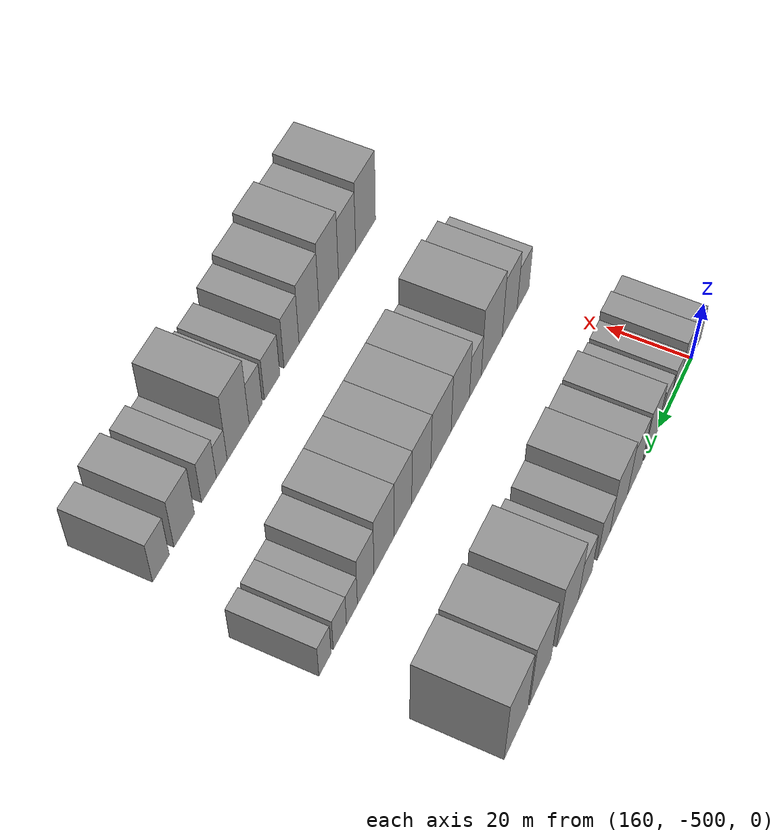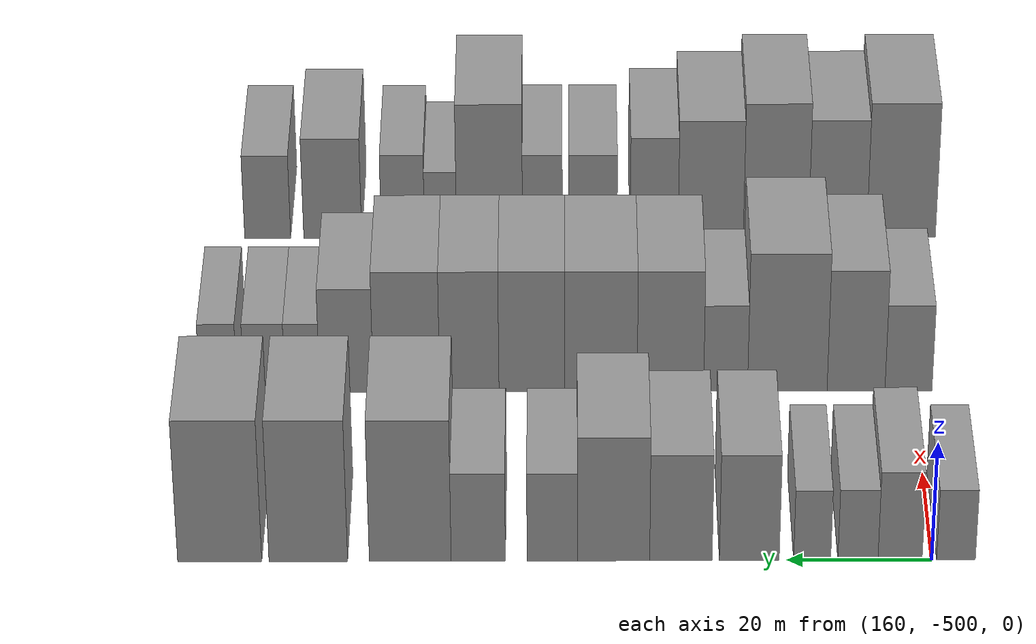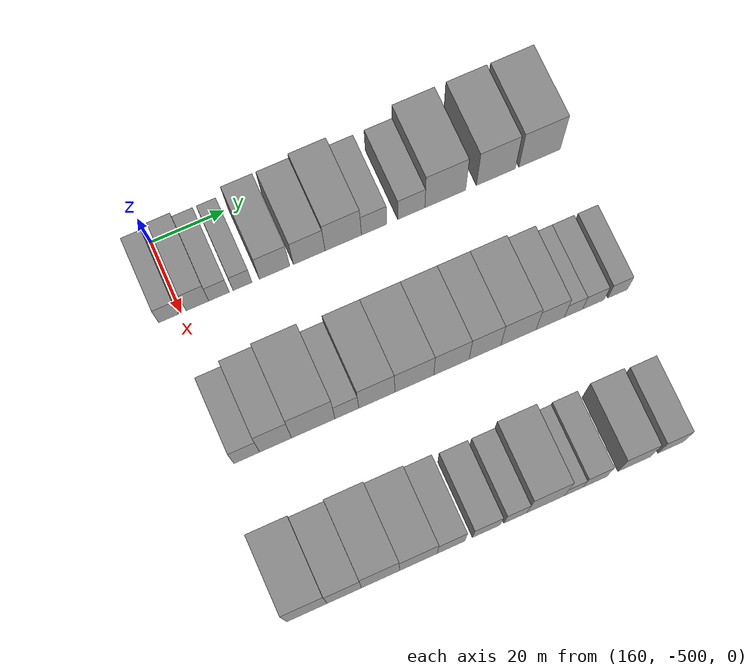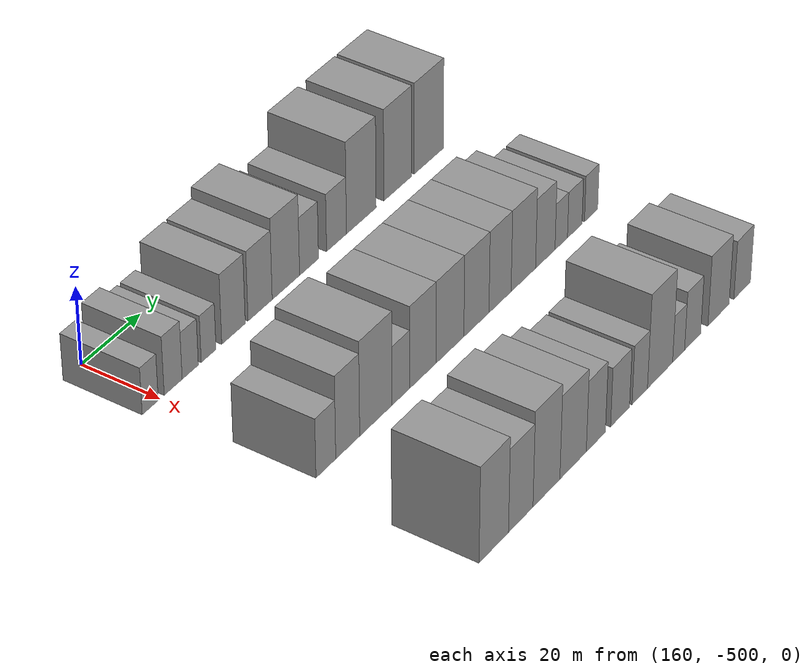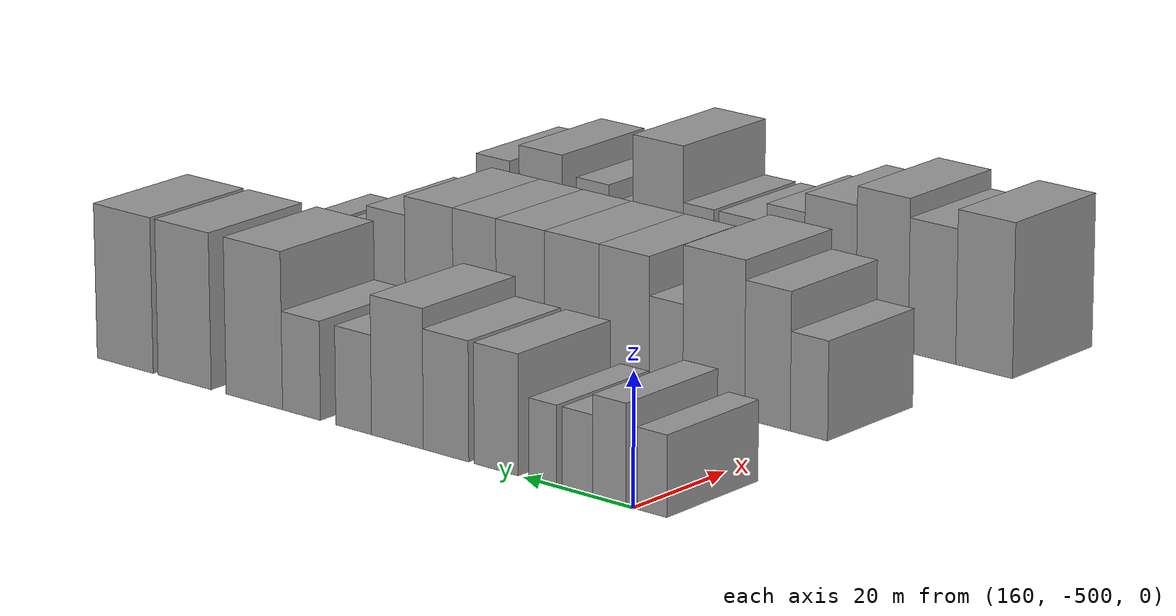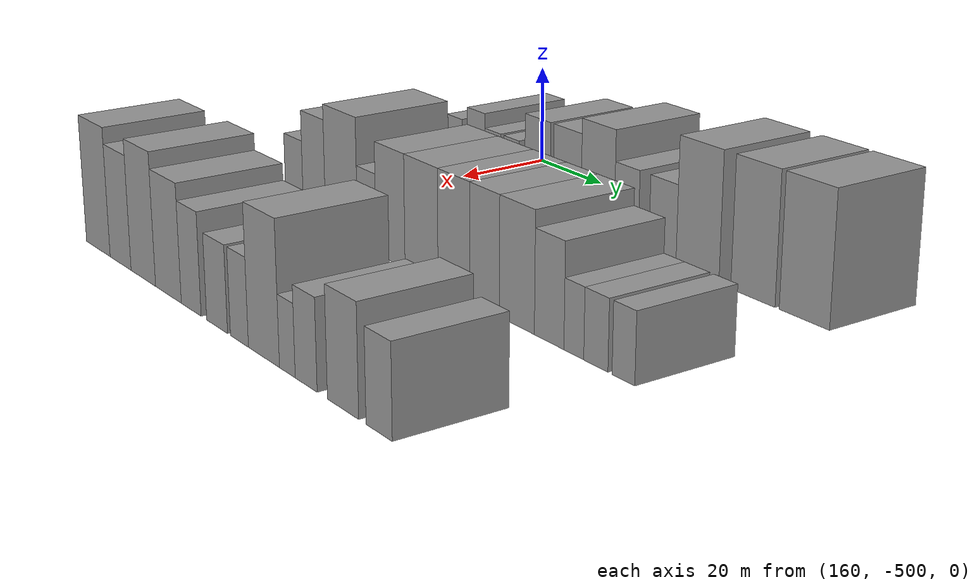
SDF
<sdf version="1.6">
 <world name="default">
  <model name="building_424">
   <static>1</static>
   <pose>170.0000 -503.2953 0 0.000000 0.000000 0.000000</pose>
   <link name="link">
    <pose>0 0 6.00 0 0 0</pose>
    <collision name="collision"><geometry><box><size>20.0000 5.3523 12.0000</size></box></geometry></collision>
    <visual name="visual">
     <cast_shadows>0</cast_shadows>
     <geometry><box><size>20.0000 5.3523 12.0000</size></box></geometry>
     <material>
      <script>
       <uri>model://grey_wall/materials/scripts</uri>
       <uri>model://grey_wall/materials/textures</uri>
       <name>vrc/grey_wall</name>
      </script>
     </material>
    </visual>
   </link>
  </model>
  <model name="building_425">
   <static>1</static>
   <pose>170.0000 -495.5739 0 0.000000 0.000000 0.000000</pose>
   <link name="link">
    <pose>0 0 7.50 0 0 0</pose>
    <collision name="collision"><geometry><box><size>20.0000 6.0906 15.0000</size></box></geometry></collision>
    <visual name="visual">
     <cast_shadows>0</cast_shadows>
     <geometry><box><size>20.0000 6.0906 15.0000</size></box></geometry>
     <material>
      <script>
       <uri>model://grey_wall/materials/scripts</uri>
       <uri>model://grey_wall/materials/textures</uri>
       <name>vrc/grey_wall</name>
      </script>
     </material>
    </visual>
   </link>
  </model>
  <model name="building_426">
   <static>1</static>
   <pose>170.0000 -489.7649 0 0.000000 0.000000 0.000000</pose>
   <link name="link">
    <pose>0 0 6.00 0 0 0</pose>
    <collision name="collision"><geometry><box><size>20.0000 5.5274 12.0000</size></box></geometry></collision>
    <visual name="visual">
     <cast_shadows>0</cast_shadows>
     <geometry><box><size>20.0000 5.5274 12.0000</size></box></geometry>
     <material>
      <script>
       <uri>model://grey_wall/materials/scripts</uri>
       <uri>model://grey_wall/materials/textures</uri>
       <name>vrc/grey_wall</name>
      </script>
     </material>
    </visual>
   </link>
  </model>
  <model name="building_427">
   <static>1</static>
   <pose>170.0000 -483.4467 0 0.000000 0.000000 0.000000</pose>
   <link name="link">
    <pose>0 0 6.00 0 0 0</pose>
    <collision name="collision"><geometry><box><size>20.0000 5.1091 12.0000</size></box></geometry></collision>
    <visual name="visual">
     <cast_shadows>0</cast_shadows>
     <geometry><box><size>20.0000 5.1091 12.0000</size></box></geometry>
     <material>
      <script>
       <uri>model://grey_wall/materials/scripts</uri>
       <uri>model://grey_wall/materials/textures</uri>
       <name>vrc/grey_wall</name>
      </script>
     </material>
    </visual>
   </link>
  </model>
  <model name="building_428">
   <static>1</static>
   <pose>170.0000 -474.7664 0 0.000000 0.000000 0.000000</pose>
   <link name="link">
    <pose>0 0 9.00 0 0 0</pose>
    <collision name="collision"><geometry><box><size>20.0000 8.2514 18.0000</size></box></geometry></collision>
    <visual name="visual">
     <cast_shadows>0</cast_shadows>
     <geometry><box><size>20.0000 8.2514 18.0000</size></box></geometry>
     <material>
      <script>
       <uri>model://grey_wall/materials/scripts</uri>
       <uri>model://grey_wall/materials/textures</uri>
       <name>vrc/grey_wall</name>
      </script>
     </material>
    </visual>
   </link>
  </model>
  <model name="building_429">
   <static>1</static>
   <pose>170.0000 -465.3327 0 0.000000 0.000000 0.000000</pose>
   <link name="link">
    <pose>0 0 9.00 0 0 0</pose>
    <collision name="collision"><geometry><box><size>20.0000 8.6159 18.0000</size></box></geometry></collision>
    <visual name="visual">
     <cast_shadows>0</cast_shadows>
     <geometry><box><size>20.0000 8.6159 18.0000</size></box></geometry>
     <material>
      <script>
       <uri>model://grey_wall/materials/scripts</uri>
       <uri>model://grey_wall/materials/textures</uri>
       <name>vrc/grey_wall</name>
      </script>
     </material>
    </visual>
   </link>
  </model>
  <model name="building_430">
   <static>1</static>
   <pose>170.0000 -456.0516 0 0.000000 0.000000 0.000000</pose>
   <link name="link">
    <pose>0 0 10.50 0 0 0</pose>
    <collision name="collision"><geometry><box><size>20.0000 9.9464 21.0000</size></box></geometry></collision>
    <visual name="visual">
     <cast_shadows>0</cast_shadows>
     <geometry><box><size>20.0000 9.9464 21.0000</size></box></geometry>
     <material>
      <script>
       <uri>model://grey_wall/materials/scripts</uri>
       <uri>model://grey_wall/materials/textures</uri>
       <name>vrc/grey_wall</name>
      </script>
     </material>
    </visual>
   </link>
  </model>
  <model name="building_431">
   <static>1</static>
   <pose>170.0000 -447.6003 0 0.000000 0.000000 0.000000</pose>
   <link name="link">
    <pose>0 0 7.50 0 0 0</pose>
    <collision name="collision"><geometry><box><size>20.0000 6.9562 15.0000</size></box></geometry></collision>
    <visual name="visual">
     <cast_shadows>0</cast_shadows>
     <geometry><box><size>20.0000 6.9562 15.0000</size></box></geometry>
     <material>
      <script>
       <uri>model://grey_wall/materials/scripts</uri>
       <uri>model://grey_wall/materials/textures</uri>
       <name>vrc/grey_wall</name>
      </script>
     </material>
    </visual>
   </link>
  </model>
  <model name="building_432">
   <static>1</static>
   <pose>170.0000 -437.3843 0 0.000000 0.000000 0.000000</pose>
   <link name="link">
    <pose>0 0 7.50 0 0 0</pose>
    <collision name="collision"><geometry><box><size>20.0000 7.4759 15.0000</size></box></geometry></collision>
    <visual name="visual">
     <cast_shadows>0</cast_shadows>
     <geometry><box><size>20.0000 7.4759 15.0000</size></box></geometry>
     <material>
      <script>
       <uri>model://grey_wall/materials/scripts</uri>
       <uri>model://grey_wall/materials/textures</uri>
       <name>vrc/grey_wall</name>
      </script>
     </material>
    </visual>
   </link>
  </model>
  <model name="building_433">
   <static>1</static>
   <pose>170.0000 -428.0015 0 0.000000 0.000000 0.000000</pose>
   <link name="link">
    <pose>0 0 12.00 0 0 0</pose>
    <collision name="collision"><geometry><box><size>20.0000 11.2898 24.0000</size></box></geometry></collision>
    <visual name="visual">
     <cast_shadows>0</cast_shadows>
     <geometry><box><size>20.0000 11.2898 24.0000</size></box></geometry>
     <material>
      <script>
       <uri>model://grey_wall/materials/scripts</uri>
       <uri>model://grey_wall/materials/textures</uri>
       <name>vrc/grey_wall</name>
      </script>
     </material>
    </visual>
   </link>
  </model>
  <model name="building_434">
   <static>1</static>
   <pose>170.0000 -413.9368 0 0.000000 0.000000 0.000000</pose>
   <link name="link">
    <pose>0 0 12.00 0 0 0</pose>
    <collision name="collision"><geometry><box><size>20.0000 10.8395 24.0000</size></box></geometry></collision>
    <visual name="visual">
     <cast_shadows>0</cast_shadows>
     <geometry><box><size>20.0000 10.8395 24.0000</size></box></geometry>
     <material>
      <script>
       <uri>model://grey_wall/materials/scripts</uri>
       <uri>model://grey_wall/materials/textures</uri>
       <name>vrc/grey_wall</name>
      </script>
     </material>
    </visual>
   </link>
  </model>
  <model name="building_435">
   <static>1</static>
   <pose>170.0000 -401.7224 0 0.000000 0.000000 0.000000</pose>
   <link name="link">
    <pose>0 0 12.00 0 0 0</pose>
    <collision name="collision"><geometry><box><size>20.0000 11.5895 24.0000</size></box></geometry></collision>
    <visual name="visual">
     <cast_shadows>0</cast_shadows>
     <geometry><box><size>20.0000 11.5895 24.0000</size></box></geometry>
     <material>
      <script>
       <uri>model://grey_wall/materials/scripts</uri>
       <uri>model://grey_wall/materials/textures</uri>
       <name>vrc/grey_wall</name>
      </script>
     </material>
    </visual>
   </link>
  </model>
  <model name="building_556">
   <static>1</static>
   <pose>210.0000 -499.2651 0 0.000000 0.000000 0.000000</pose>
   <link name="link">
    <pose>0 0 7.50 0 0 0</pose>
    <collision name="collision"><geometry><box><size>20.0000 6.8264 15.0000</size></box></geometry></collision>
    <visual name="visual">
     <cast_shadows>0</cast_shadows>
     <geometry><box><size>20.0000 6.8264 15.0000</size></box></geometry>
     <material>
      <script>
       <uri>model://grey_wall/materials/scripts</uri>
       <uri>model://grey_wall/materials/textures</uri>
       <name>vrc/grey_wall</name>
      </script>
     </material>
    </visual>
   </link>
  </model>
  <model name="building_557">
   <static>1</static>
   <pose>210.0000 -491.6516 0 0.000000 0.000000 0.000000</pose>
   <link name="link">
    <pose>0 0 10.50 0 0 0</pose>
    <collision name="collision"><geometry><box><size>20.0000 8.4005 21.0000</size></box></geometry></collision>
    <visual name="visual">
     <cast_shadows>0</cast_shadows>
     <geometry><box><size>20.0000 8.4005 21.0000</size></box></geometry>
     <material>
      <script>
       <uri>model://grey_wall/materials/scripts</uri>
       <uri>model://grey_wall/materials/textures</uri>
       <name>vrc/grey_wall</name>
      </script>
     </material>
    </visual>
   </link>
  </model>
  <model name="building_558">
   <static>1</static>
   <pose>210.0000 -481.6776 0 0.000000 0.000000 0.000000</pose>
   <link name="link">
    <pose>0 0 12.00 0 0 0</pose>
    <collision name="collision"><geometry><box><size>20.0000 11.5476 24.0000</size></box></geometry></collision>
    <visual name="visual">
     <cast_shadows>0</cast_shadows>
     <geometry><box><size>20.0000 11.5476 24.0000</size></box></geometry>
     <material>
      <script>
       <uri>model://grey_wall/materials/scripts</uri>
       <uri>model://grey_wall/materials/textures</uri>
       <name>vrc/grey_wall</name>
      </script>
     </material>
    </visual>
   </link>
  </model>
  <model name="building_559">
   <static>1</static>
   <pose>210.0000 -472.7165 0 0.000000 0.000000 0.000000</pose>
   <link name="link">
    <pose>0 0 7.50 0 0 0</pose>
    <collision name="collision"><geometry><box><size>20.0000 6.3744 15.0000</size></box></geometry></collision>
    <visual name="visual">
     <cast_shadows>0</cast_shadows>
     <geometry><box><size>20.0000 6.3744 15.0000</size></box></geometry>
     <material>
      <script>
       <uri>model://grey_wall/materials/scripts</uri>
       <uri>model://grey_wall/materials/textures</uri>
       <name>vrc/grey_wall</name>
      </script>
     </material>
    </visual>
   </link>
  </model>
  <model name="building_560">
   <static>1</static>
   <pose>210.0000 -464.7133 0 0.000000 0.000000 0.000000</pose>
   <link name="link">
    <pose>0 0 10.50 0 0 0</pose>
    <collision name="collision"><geometry><box><size>20.0000 9.6320 21.0000</size></box></geometry></collision>
    <visual name="visual">
     <cast_shadows>0</cast_shadows>
     <geometry><box><size>20.0000 9.6320 21.0000</size></box></geometry>
     <material>
      <script>
       <uri>model://grey_wall/materials/scripts</uri>
       <uri>model://grey_wall/materials/textures</uri>
       <name>vrc/grey_wall</name>
      </script>
     </material>
    </visual>
   </link>
  </model>
  <model name="building_561">
   <static>1</static>
   <pose>210.0000 -454.6534 0 0.000000 0.000000 0.000000</pose>
   <link name="link">
    <pose>0 0 10.50 0 0 0</pose>
    <collision name="collision"><geometry><box><size>20.0000 10.4879 21.0000</size></box></geometry></collision>
    <visual name="visual">
     <cast_shadows>0</cast_shadows>
     <geometry><box><size>20.0000 10.4879 21.0000</size></box></geometry>
     <material>
      <script>
       <uri>model://grey_wall/materials/scripts</uri>
       <uri>model://grey_wall/materials/textures</uri>
       <name>vrc/grey_wall</name>
      </script>
     </material>
    </visual>
   </link>
  </model>
  <model name="building_562">
   <static>1</static>
   <pose>210.0000 -444.6317 0 0.000000 0.000000 0.000000</pose>
   <link name="link">
    <pose>0 0 10.50 0 0 0</pose>
    <collision name="collision"><geometry><box><size>20.0000 9.5554 21.0000</size></box></geometry></collision>
    <visual name="visual">
     <cast_shadows>0</cast_shadows>
     <geometry><box><size>20.0000 9.5554 21.0000</size></box></geometry>
     <material>
      <script>
       <uri>model://grey_wall/materials/scripts</uri>
       <uri>model://grey_wall/materials/textures</uri>
       <name>vrc/grey_wall</name>
      </script>
     </material>
    </visual>
   </link>
  </model>
  <model name="building_563">
   <static>1</static>
   <pose>210.0000 -435.5617 0 0.000000 0.000000 0.000000</pose>
   <link name="link">
    <pose>0 0 10.50 0 0 0</pose>
    <collision name="collision"><geometry><box><size>20.0000 8.5847 21.0000</size></box></geometry></collision>
    <visual name="visual">
     <cast_shadows>0</cast_shadows>
     <geometry><box><size>20.0000 8.5847 21.0000</size></box></geometry>
     <material>
      <script>
       <uri>model://grey_wall/materials/scripts</uri>
       <uri>model://grey_wall/materials/textures</uri>
       <name>vrc/grey_wall</name>
      </script>
     </material>
    </visual>
   </link>
  </model>
  <model name="building_564">
   <static>1</static>
   <pose>210.0000 -426.4533 0 0.000000 0.000000 0.000000</pose>
   <link name="link">
    <pose>0 0 10.50 0 0 0</pose>
    <collision name="collision"><geometry><box><size>20.0000 9.6320 21.0000</size></box></geometry></collision>
    <visual name="visual">
     <cast_shadows>0</cast_shadows>
     <geometry><box><size>20.0000 9.6320 21.0000</size></box></geometry>
     <material>
      <script>
       <uri>model://grey_wall/materials/scripts</uri>
       <uri>model://grey_wall/materials/textures</uri>
       <name>vrc/grey_wall</name>
      </script>
     </material>
    </visual>
   </link>
  </model>
  <model name="building_565">
   <static>1</static>
   <pose>210.0000 -417.7530 0 0.000000 0.000000 0.000000</pose>
   <link name="link">
    <pose>0 0 9.00 0 0 0</pose>
    <collision name="collision"><geometry><box><size>20.0000 7.7686 18.0000</size></box></geometry></collision>
    <visual name="visual">
     <cast_shadows>0</cast_shadows>
     <geometry><box><size>20.0000 7.7686 18.0000</size></box></geometry>
     <material>
      <script>
       <uri>model://grey_wall/materials/scripts</uri>
       <uri>model://grey_wall/materials/textures</uri>
       <name>vrc/grey_wall</name>
      </script>
     </material>
    </visual>
   </link>
  </model>
  <model name="building_566">
   <static>1</static>
   <pose>210.0000 -411.3527 0 0.000000 0.000000 0.000000</pose>
   <link name="link">
    <pose>0 0 6.00 0 0 0</pose>
    <collision name="collision"><geometry><box><size>20.0000 5.0319 12.0000</size></box></geometry></collision>
    <visual name="visual">
     <cast_shadows>0</cast_shadows>
     <geometry><box><size>20.0000 5.0319 12.0000</size></box></geometry>
     <material>
      <script>
       <uri>model://grey_wall/materials/scripts</uri>
       <uri>model://grey_wall/materials/textures</uri>
       <name>vrc/grey_wall</name>
      </script>
     </material>
    </visual>
   </link>
  </model>
  <model name="building_567">
   <static>1</static>
   <pose>210.0000 -405.8599 0 0.000000 0.000000 0.000000</pose>
   <link name="link">
    <pose>0 0 6.00 0 0 0</pose>
    <collision name="collision"><geometry><box><size>20.0000 5.9537 12.0000</size></box></geometry></collision>
    <visual name="visual">
     <cast_shadows>0</cast_shadows>
     <geometry><box><size>20.0000 5.9537 12.0000</size></box></geometry>
     <material>
      <script>
       <uri>model://grey_wall/materials/scripts</uri>
       <uri>model://grey_wall/materials/textures</uri>
       <name>vrc/grey_wall</name>
      </script>
     </material>
    </visual>
   </link>
  </model>
  <model name="building_568">
   <static>1</static>
   <pose>210.0000 -399.1806 0 0.000000 0.000000 0.000000</pose>
   <link name="link">
    <pose>0 0 6.00 0 0 0</pose>
    <collision name="collision"><geometry><box><size>20.0000 5.4050 12.0000</size></box></geometry></collision>
    <visual name="visual">
     <cast_shadows>0</cast_shadows>
     <geometry><box><size>20.0000 5.4050 12.0000</size></box></geometry>
     <material>
      <script>
       <uri>model://grey_wall/materials/scripts</uri>
       <uri>model://grey_wall/materials/textures</uri>
       <name>vrc/grey_wall</name>
      </script>
     </material>
    </visual>
   </link>
  </model>
  <model name="building_702">
   <static>1</static>
   <pose>250.0000 -500.6606 0 0.000000 0.000000 0.000000</pose>
   <link name="link">
    <pose>0 0 12.00 0 0 0</pose>
    <collision name="collision"><geometry><box><size>20.0000 10.4601 24.0000</size></box></geometry></collision>
    <visual name="visual">
     <cast_shadows>0</cast_shadows>
     <geometry><box><size>20.0000 10.4601 24.0000</size></box></geometry>
     <material>
      <script>
       <uri>model://grey_wall/materials/scripts</uri>
       <uri>model://grey_wall/materials/textures</uri>
       <name>vrc/grey_wall</name>
      </script>
     </material>
    </visual>
   </link>
  </model>
  <model name="building_703">
   <static>1</static>
   <pose>250.0000 -490.9945 0 0.000000 0.000000 0.000000</pose>
   <link name="link">
    <pose>0 0 10.50 0 0 0</pose>
    <collision name="collision"><geometry><box><size>20.0000 8.8722 21.0000</size></box></geometry></collision>
    <visual name="visual">
     <cast_shadows>0</cast_shadows>
     <geometry><box><size>20.0000 8.8722 21.0000</size></box></geometry>
     <material>
      <script>
       <uri>model://grey_wall/materials/scripts</uri>
       <uri>model://grey_wall/materials/textures</uri>
       <name>vrc/grey_wall</name>
      </script>
     </material>
    </visual>
   </link>
  </model>
  <model name="building_704">
   <static>1</static>
   <pose>250.0000 -481.6037 0 0.000000 0.000000 0.000000</pose>
   <link name="link">
    <pose>0 0 12.00 0 0 0</pose>
    <collision name="collision"><geometry><box><size>20.0000 9.9094 24.0000</size></box></geometry></collision>
    <visual name="visual">
     <cast_shadows>0</cast_shadows>
     <geometry><box><size>20.0000 9.9094 24.0000</size></box></geometry>
     <material>
      <script>
       <uri>model://grey_wall/materials/scripts</uri>
       <uri>model://grey_wall/materials/textures</uri>
       <name>vrc/grey_wall</name>
      </script>
     </material>
    </visual>
   </link>
  </model>
  <model name="building_705">
   <static>1</static>
   <pose>250.0000 -471.6895 0 0.000000 0.000000 0.000000</pose>
   <link name="link">
    <pose>0 0 10.50 0 0 0</pose>
    <collision name="collision"><geometry><box><size>20.0000 9.9190 21.0000</size></box></geometry></collision>
    <visual name="visual">
     <cast_shadows>0</cast_shadows>
     <geometry><box><size>20.0000 9.9190 21.0000</size></box></geometry>
     <material>
      <script>
       <uri>model://grey_wall/materials/scripts</uri>
       <uri>model://grey_wall/materials/textures</uri>
       <name>vrc/grey_wall</name>
      </script>
     </material>
    </visual>
   </link>
  </model>
  <model name="building_706">
   <static>1</static>
   <pose>250.0000 -463.0839 0 0.000000 0.000000 0.000000</pose>
   <link name="link">
    <pose>0 0 9.00 0 0 0</pose>
    <collision name="collision"><geometry><box><size>20.0000 7.2922 18.0000</size></box></geometry></collision>
    <visual name="visual">
     <cast_shadows>0</cast_shadows>
     <geometry><box><size>20.0000 7.2922 18.0000</size></box></geometry>
     <material>
      <script>
       <uri>model://grey_wall/materials/scripts</uri>
       <uri>model://grey_wall/materials/textures</uri>
       <name>vrc/grey_wall</name>
      </script>
     </material>
    </visual>
   </link>
  </model>
  <model name="building_707">
   <static>1</static>
   <pose>250.0000 -453.7722 0 0.000000 0.000000 0.000000</pose>
   <link name="link">
    <pose>0 0 7.50 0 0 0</pose>
    <collision name="collision"><geometry><box><size>20.0000 7.3312 15.0000</size></box></geometry></collision>
    <visual name="visual">
     <cast_shadows>0</cast_shadows>
     <geometry><box><size>20.0000 7.3312 15.0000</size></box></geometry>
     <material>
      <script>
       <uri>model://grey_wall/materials/scripts</uri>
       <uri>model://grey_wall/materials/textures</uri>
       <name>vrc/grey_wall</name>
      </script>
     </material>
    </visual>
   </link>
  </model>
  <model name="building_708">
   <static>1</static>
   <pose>250.0000 -446.0794 0 0.000000 0.000000 0.000000</pose>
   <link name="link">
    <pose>0 0 7.50 0 0 0</pose>
    <collision name="collision"><geometry><box><size>20.0000 6.0543 15.0000</size></box></geometry></collision>
    <visual name="visual">
     <cast_shadows>0</cast_shadows>
     <geometry><box><size>20.0000 6.0543 15.0000</size></box></geometry>
     <material>
      <script>
       <uri>model://grey_wall/materials/scripts</uri>
       <uri>model://grey_wall/materials/textures</uri>
       <name>vrc/grey_wall</name>
      </script>
     </material>
    </visual>
   </link>
  </model>
  <model name="building_709">
   <static>1</static>
   <pose>250.0000 -438.0389 0 0.000000 0.000000 0.000000</pose>
   <link name="link">
    <pose>0 0 12.00 0 0 0</pose>
    <collision name="collision"><geometry><box><size>20.0000 10.0268 24.0000</size></box></geometry></collision>
    <visual name="visual">
     <cast_shadows>0</cast_shadows>
     <geometry><box><size>20.0000 10.0268 24.0000</size></box></geometry>
     <material>
      <script>
       <uri>model://grey_wall/materials/scripts</uri>
       <uri>model://grey_wall/materials/textures</uri>
       <name>vrc/grey_wall</name>
      </script>
     </material>
    </visual>
   </link>
  </model>
  <model name="building_710">
   <static>1</static>
   <pose>250.0000 -430.5880 0 0.000000 0.000000 0.000000</pose>
   <link name="link">
    <pose>0 0 6.00 0 0 0</pose>
    <collision name="collision"><geometry><box><size>20.0000 4.8750 12.0000</size></box></geometry></collision>
    <visual name="visual">
     <cast_shadows>0</cast_shadows>
     <geometry><box><size>20.0000 4.8750 12.0000</size></box></geometry>
     <material>
      <script>
       <uri>model://grey_wall/materials/scripts</uri>
       <uri>model://grey_wall/materials/textures</uri>
       <name>vrc/grey_wall</name>
      </script>
     </material>
    </visual>
   </link>
  </model>
  <model name="building_711">
   <static>1</static>
   <pose>250.0000 -424.8645 0 0.000000 0.000000 0.000000</pose>
   <link name="link">
    <pose>0 0 7.50 0 0 0</pose>
    <collision name="collision"><geometry><box><size>20.0000 6.5720 15.0000</size></box></geometry></collision>
    <visual name="visual">
     <cast_shadows>0</cast_shadows>
     <geometry><box><size>20.0000 6.5720 15.0000</size></box></geometry>
     <material>
      <script>
       <uri>model://grey_wall/materials/scripts</uri>
       <uri>model://grey_wall/materials/textures</uri>
       <name>vrc/grey_wall</name>
      </script>
     </material>
    </visual>
   </link>
  </model>
  <model name="building_712">
   <static>1</static>
   <pose>250.0000 -414.1763 0 0.000000 0.000000 0.000000</pose>
   <link name="link">
    <pose>0 0 9.00 0 0 0</pose>
    <collision name="collision"><geometry><box><size>20.0000 8.8043 18.0000</size></box></geometry></collision>
    <visual name="visual">
     <cast_shadows>0</cast_shadows>
     <geometry><box><size>20.0000 8.8043 18.0000</size></box></geometry>
     <material>
      <script>
       <uri>model://grey_wall/materials/scripts</uri>
       <uri>model://grey_wall/materials/textures</uri>
       <name>vrc/grey_wall</name>
      </script>
     </material>
    </visual>
   </link>
  </model>
  <model name="building_713">
   <static>1</static>
   <pose>250.0000 -404.2823 0 0.000000 0.000000 0.000000</pose>
   <link name="link">
    <pose>0 0 7.50 0 0 0</pose>
    <collision name="collision"><geometry><box><size>20.0000 6.9837 15.0000</size></box></geometry></collision>
    <visual name="visual">
     <cast_shadows>0</cast_shadows>
     <geometry><box><size>20.0000 6.9837 15.0000</size></box></geometry>
     <material>
      <script>
       <uri>model://grey_wall/materials/scripts</uri>
       <uri>model://grey_wall/materials/textures</uri>
       <name>vrc/grey_wall</name>
      </script>
     </material>
    </visual>
   </link>
  </model>
 </world>
</sdf>
